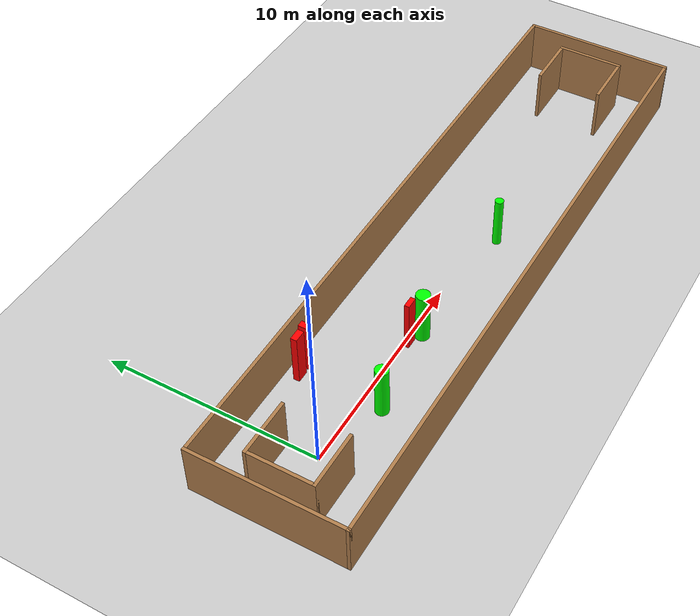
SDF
<sdf version="1.7">
 <world name="default">
  <light name="sun" type="directional">
   <pose>0 0 10 0 -0 0</pose>
   <diffuse>0.8 0.8 0.8 1</diffuse>
   <specular>0.2 0.2 0.2 1</specular>
   <attenuation>
    <range>1000</range>
    <constant>0.9</constant>
    <linear>0.01</linear>
    <quadratic>0.001</quadratic>
   </attenuation>
   <direction>-0.5 0.1 -0.9</direction>
   <spot><inner_angle>0</inner_angle><outer_angle>0</outer_angle><falloff>0</falloff></spot>
  </light>
  <model name="ground_plane">
   <static>1</static>
   <link name="link">
    <collision name="collision">
     <geometry><plane><normal>0 0 1</normal><size>100 100</size></plane></geometry>
     <surface>
      <contact><collide_bitmask>65535</collide_bitmask></contact>
      <friction><ode><mu>100</mu><mu2>50</mu2></ode></friction>
     </surface>
    </collision>
    <visual name="visual">
     <cast_shadows>0</cast_shadows>
     <geometry><plane><normal>0 0 1</normal><size>100 100</size></plane></geometry>
     <material>
      <script><uri>file://media/materials/scripts/gazebo.material</uri><name>Gazebo/Grey</name></script>
     </material>
    </visual>
   </link>
  </model>
  <gravity>0 0 -9.8</gravity>
  <magnetic_field>6e-06 2.3e-05 -4.2e-05</magnetic_field>
  <atmosphere type="adiabatic"/>
  <physics type="ode">
   <max_step_size>0.001</max_step_size>
   <real_time_factor>1</real_time_factor>
   <real_time_update_rate>1000</real_time_update_rate>
  </physics>
  <scene><ambient>0.4 0.4 0.4 1</ambient><background>0.7 0.7 0.7 1</background><shadows>1</shadows></scene>
  <spherical_coordinates>
   <surface_model>EARTH_WGS84</surface_model>
   <latitude_deg>0</latitude_deg>
   <longitude_deg>0</longitude_deg>
   <elevation>0</elevation>
   <heading_deg>0</heading_deg>
  </spherical_coordinates>
  <model name="my_base_walls">
   <link name="Wall_0">
    <collision name="Wall_0_Collision">
     <geometry><box><size>7.15 0.15 2.5</size></box></geometry>
     <pose>0 0 1.25 0 -0 0</pose>
    </collision>
    <visual name="Wall_0_Visual">
     <pose>0 0 1.25 0 -0 0</pose>
     <geometry><box><size>7.15 0.15 2.5</size></box></geometry>
     <material>
      <script><uri>file://media/materials/scripts/gazebo.material</uri><name>Gazebo/Wood</name></script>
      <ambient>1 1 1 1</ambient>
     </material>
     <meta><layer>0</layer></meta>
    </visual>
    <pose>-15 0 0 0 -0 1.5708</pose>
   </link>
   <link name="Wall_10">
    <collision name="Wall_10_Collision">
     <geometry><box><size>2.65 0.15 2.5</size></box></geometry>
     <pose>0 0 1.25 0 -0 0</pose>
    </collision>
    <visual name="Wall_10_Visual">
     <pose>0 0 1.25 0 -0 0</pose>
     <geometry><box><size>2.65 0.15 2.5</size></box></geometry>
     <material>
      <script><uri>file://media/materials/scripts/gazebo.material</uri><name>Gazebo/Wood</name></script>
      <ambient>1 1 1 1</ambient>
     </material>
     <meta><layer>0</layer></meta>
    </visual>
    <pose>-12.75 -1.5 0 0 -0 0</pose>
   </link>
   <link name="Wall_12">
    <collision name="Wall_12_Collision">
     <geometry><box><size>2.65 0.15 2.5</size></box></geometry>
     <pose>0 0 1.25 0 -0 0</pose>
    </collision>
    <visual name="Wall_12_Visual">
     <pose>0 0 1.25 0 -0 0</pose>
     <geometry><box><size>2.65 0.15 2.5</size></box></geometry>
     <material>
      <script><uri>file://media/materials/scripts/gazebo.material</uri><name>Gazebo/Wood</name></script>
      <ambient>1 1 1 1</ambient>
     </material>
     <meta><layer>0</layer></meta>
    </visual>
    <pose>-12.75 1.5 0 0 -0 0</pose>
   </link>
   <link name="Wall_14">
    <collision name="Wall_14_Collision">
     <geometry><box><size>3.15 0.15 2.5</size></box></geometry>
     <pose>0 0 1.25 0 -0 0</pose>
    </collision>
    <visual name="Wall_14_Visual">
     <pose>0 0 1.25 0 -0 0</pose>
     <geometry><box><size>3.15 0.15 2.5</size></box></geometry>
     <material>
      <script><uri>file://media/materials/scripts/gazebo.material</uri><name>Gazebo/Wood</name></script>
      <ambient>1 1 1 1</ambient>
     </material>
     <meta><layer>0</layer></meta>
    </visual>
    <pose>14 0 0 0 -0 -1.5708</pose>
   </link>
   <link name="Wall_15">
    <collision name="Wall_15_Collision">
     <geometry><box><size>2.65 0.15 2.5</size></box></geometry>
     <pose>0 0 1.25 0 -0 0</pose>
    </collision>
    <visual name="Wall_15_Visual">
     <pose>0 0 1.25 0 -0 0</pose>
     <geometry><box><size>2.65 0.15 2.5</size></box></geometry>
     <material>
      <script><uri>file://media/materials/scripts/gazebo.material</uri><name>Gazebo/Wood</name></script>
      <ambient>1 1 1 1</ambient>
     </material>
     <meta><layer>0</layer></meta>
    </visual>
    <pose>12.75 -1.5 0 0 -0 3.14159</pose>
   </link>
   <link name="Wall_17">
    <collision name="Wall_17_Collision">
     <geometry><box><size>2.65 0.15 2.5</size></box></geometry>
     <pose>0 0 1.25 0 -0 0</pose>
    </collision>
    <visual name="Wall_17_Visual">
     <pose>0 0 1.25 0 -0 0</pose>
     <geometry><box><size>2.65 0.15 2.5</size></box></geometry>
     <material>
      <script><uri>file://media/materials/scripts/gazebo.material</uri><name>Gazebo/Wood</name></script>
      <ambient>1 1 1 1</ambient>
     </material>
     <meta><layer>0</layer></meta>
    </visual>
    <pose>12.75 1.5 0 0 -0 3.14159</pose>
   </link>
   <link name="Wall_2">
    <collision name="Wall_2_Collision">
     <geometry><box><size>30.15 0.15 2.5</size></box></geometry>
     <pose>0 0 1.25 0 -0 0</pose>
    </collision>
    <visual name="Wall_2_Visual">
     <pose>0 0 1.25 0 -0 0</pose>
     <geometry><box><size>30.15 0.15 2.5</size></box></geometry>
     <material>
      <script><uri>file://media/materials/scripts/gazebo.material</uri><name>Gazebo/Wood</name></script>
      <ambient>1 1 1 1</ambient>
     </material>
     <meta><layer>0</layer></meta>
    </visual>
    <pose>-0 -3.5 0 0 -0 0</pose>
   </link>
   <link name="Wall_4">
    <collision name="Wall_4_Collision">
     <geometry><box><size>30.15 0.15 2.5</size></box></geometry>
     <pose>0 0 1.25 0 -0 0</pose>
    </collision>
    <visual name="Wall_4_Visual">
     <pose>0 0 1.25 0 -0 0</pose>
     <geometry><box><size>30.15 0.15 2.5</size></box></geometry>
     <material>
      <script><uri>file://media/materials/scripts/gazebo.material</uri><name>Gazebo/Wood</name></script>
      <ambient>1 1 1 1</ambient>
     </material>
     <meta><layer>0</layer></meta>
    </visual>
    <pose>-0 3.5 0 0 -0 0</pose>
   </link>
   <link name="Wall_6">
    <collision name="Wall_6_Collision">
     <geometry><box><size>7.15 0.15 2.5</size></box></geometry>
     <pose>0 0 1.25 0 -0 0</pose>
    </collision>
    <visual name="Wall_6_Visual">
     <pose>0 0 1.25 0 -0 0</pose>
     <geometry><box><size>7.15 0.15 2.5</size></box></geometry>
     <material>
      <script><uri>file://media/materials/scripts/gazebo.material</uri><name>Gazebo/Wood</name></script>
      <ambient>1 1 1 1</ambient>
     </material>
     <meta><layer>0</layer></meta>
    </visual>
    <pose>15 0 0 0 -0 -1.5708</pose>
   </link>
   <link name="Wall_9">
    <collision name="Wall_9_Collision">
     <geometry><box><size>3.15 0.15 2.5</size></box></geometry>
     <pose>0 0 1.25 0 -0 0</pose>
    </collision>
    <visual name="Wall_9_Visual">
     <pose>0 0 1.25 0 -0 0</pose>
     <geometry><box><size>3.15 0.15 2.5</size></box></geometry>
     <material>
      <script><uri>file://media/materials/scripts/gazebo.material</uri><name>Gazebo/Wood</name></script>
      <ambient>1 1 1 1</ambient>
     </material>
     <meta><layer>0</layer></meta>
    </visual>
    <pose>-14 0 0 0 -0 -1.5708</pose>
   </link>
   <static>1</static>
   <pose>11.5 0 0 0 -0 0</pose>
  </model>
  <model name="cylinder1">
   <static>1</static>
   <link name="link">
    <inertial>
     <mass>1</mass>
     <inertia><ixx>0.5</ixx><ixy>0</ixy><ixz>0</ixz><iyy>0.5</iyy><iyz>0</iyz><izz>1</izz></inertia>
    </inertial>
    <collision name="collision">
     <geometry><cylinder><radius>0.2996965133713128</radius><length>2.5</length></cylinder></geometry>
    </collision>
    <visual name="visual">
     <geometry><cylinder><radius>0.2996965133713128</radius><length>2.5</length></cylinder></geometry>
     <material>
      <ambient>0 1 0 1</ambient>
      <diffuse>0 1 0 1</diffuse>
      <specular>0.1 0.1 0.1 1</specular>
      <emissive>0 0 0 0</emissive>
     </material>
    </visual>
   </link>
   <pose>3.264309701451193 -0.9517664357842182 1.25 0 0 0</pose>
  </model>
  <model name="cylinder2">
   <static>1</static>
   <link name="link">
    <inertial>
     <mass>1</mass>
     <inertia><ixx>0.5</ixx><ixy>0</ixy><ixz>0</ixz><iyy>0.5</iyy><iyz>0</iyz><izz>1</izz></inertia>
    </inertial>
    <collision name="collision">
     <geometry><cylinder><radius>0.321609971479703</radius><length>2.5</length></cylinder></geometry>
    </collision>
    <visual name="visual">
     <geometry><cylinder><radius>0.321609971479703</radius><length>2.5</length></cylinder></geometry>
     <material>
      <ambient>0 1 0 1</ambient>
      <diffuse>0 1 0 1</diffuse>
      <specular>0.1 0.1 0.1 1</specular>
      <emissive>0 0 0 0</emissive>
     </material>
    </visual>
   </link>
   <pose>7.5060681085510055 -0.46166864311289935 1.25 0 0 0</pose>
  </model>
  <model name="cylinder3">
   <static>1</static>
   <link name="link">
    <inertial>
     <mass>1</mass>
     <inertia><ixx>0.5</ixx><ixy>0</ixy><ixz>0</ixz><iyy>0.5</iyy><iyz>0</iyz><izz>1</izz></inertia>
    </inertial>
    <collision name="collision">
     <geometry><cylinder><radius>0.1973507140355366</radius><length>2.5</length></cylinder></geometry>
    </collision>
    <visual name="visual">
     <geometry><cylinder><radius>0.1973507140355366</radius><length>2.5</length></cylinder></geometry>
     <material>
      <ambient>0 1 0 1</ambient>
      <diffuse>0 1 0 1</diffuse>
      <specular>0.1 0.1 0.1 1</specular>
      <emissive>0 0 0 0</emissive>
     </material>
    </visual>
   </link>
   <pose>14.036437789494666 -0.6925843974444033 1.25 0 0 0</pose>
  </model>
  <model name="box1">
   <static>1</static>
   <link name="link">
    <inertial>
     <mass>1</mass>
     <inertia><ixx>0.083</ixx><ixy>0</ixy><ixz>0</ixz><iyy>0.083</iyy><iyz>0</iyz><izz>0.083</izz></inertia>
    </inertial>
    <collision name="collision">
     <geometry><box><size>0.5275144286186455 0.22585743679866907 2.5</size></box></geometry>
    </collision>
    <visual name="visual">
     <geometry><box><size>0.5275144286186455 0.22585743679866907 2.5</size></box></geometry>
     <material>
      <ambient>1 0 0 1</ambient>
      <diffuse>1 0 0 1</diffuse>
      <specular>0.1 0.1 0.1 1</specular>
      <emissive>0 0 0 0</emissive>
     </material>
    </visual>
    <sensor name="my_contact" type="contact">
     <contact><collision>box_collision</collision><topic>__default_topic__</topic></contact>
    </sensor>
   </link>
   <pose>6.887491371537163 -0.19208204085228342 1.25 0 0 0</pose>
  </model>
  <model name="box2">
   <static>1</static>
   <link name="link">
    <inertial>
     <mass>1</mass>
     <inertia><ixx>0.083</ixx><ixy>0</ixy><ixz>0</ixz><iyy>0.083</iyy><iyz>0</iyz><izz>0.083</izz></inertia>
    </inertial>
    <collision name="collision">
     <geometry><box><size>0.5506027864124265 0.2870168908661515 2.5</size></box></geometry>
    </collision>
    <visual name="visual">
     <geometry><box><size>0.5506027864124265 0.2870168908661515 2.5</size></box></geometry>
     <material>
      <ambient>1 0 0 1</ambient>
      <diffuse>1 0 0 1</diffuse>
      <specular>0.1 0.1 0.1 1</specular>
      <emissive>0 0 0 0</emissive>
     </material>
    </visual>
    <sensor name="my_contact" type="contact">
     <contact><collision>box_collision</collision><topic>__default_topic__</topic></contact>
    </sensor>
   </link>
   <pose>3.1651791210451012 2.828013540180627 1.25 0 0 0</pose>
  </model>
  <model name="box3">
   <static>1</static>
   <link name="link">
    <inertial>
     <mass>1</mass>
     <inertia><ixx>0.083</ixx><ixy>0</ixy><ixz>0</ixz><iyy>0.083</iyy><iyz>0</iyz><izz>0.083</izz></inertia>
    </inertial>
    <collision name="collision">
     <geometry><box><size>0.29508067412348626 0.4171138715020073 2.5</size></box></geometry>
    </collision>
    <visual name="visual">
     <geometry><box><size>0.29508067412348626 0.4171138715020073 2.5</size></box></geometry>
     <material>
      <ambient>1 0 0 1</ambient>
      <diffuse>1 0 0 1</diffuse>
      <specular>0.1 0.1 0.1 1</specular>
      <emissive>0 0 0 0</emissive>
     </material>
    </visual>
    <sensor name="my_contact" type="contact">
     <contact><collision>box_collision</collision><topic>__default_topic__</topic></contact>
    </sensor>
   </link>
   <pose>3.755197907484664 2.867705010860522 1.25 0 0 0</pose>
  </model>
 </world>
</sdf>
